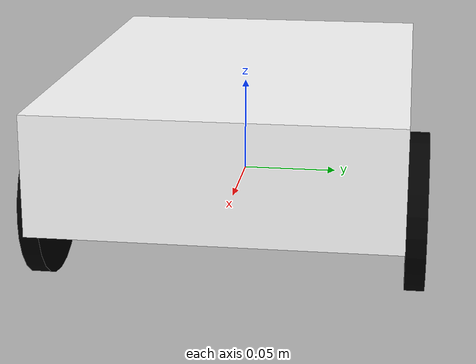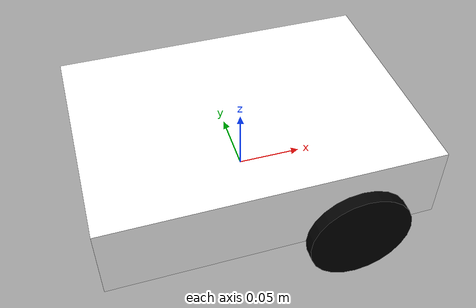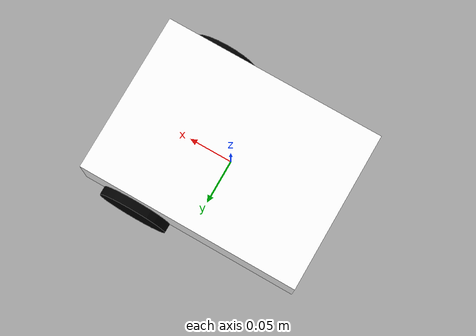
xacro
<?xml version="1.0"?>
<robot xmlns:xacro="http://www.ros.org/wiki/xacro" name="diffbot">

  <xacro:arg name="use_ros2_control" default="false"/>
  <xacro:arg name="controllers_file" default=""/>

  <!-- SIMULATION PARAMETERS -->
  <xacro:property name="chassis_length" value="0.25"/>
  <xacro:property name="chassis_width" value="0.18"/>
  <xacro:property name="chassis_height" value="0.06"/>
  <xacro:property name="chassis_mass" value="1.0"/>

  <xacro:property name="wheel_radius" value="0.04"/>
  <xacro:property name="wheel_width" value="0.01"/>
  <xacro:property name="wheel_mass" value="0.05"/>

  <!-- base_link is at the wheel axle centerline. -->
  <xacro:property name="chassis_z" value="${chassis_height / 2.0}"/>
  <xacro:property name="wheel_x" value="${chassis_length / 4.0}"/>
  <xacro:property name="wheel_y" value="0.095"/>
  <xacro:property name="wheel_z" value="0.0"/>

  <xacro:property name="caster_radius" value="${wheel_radius / 2.0}"/>
  <xacro:property name="caster_x" value="${-chassis_length / 4.0}"/>
  <xacro:property name="caster_z" value="${caster_radius - wheel_radius}"/>
  <xacro:property name="caster_mass" value="0.02"/>

  <xacro:macro name="box_inertia" params="mass x y z">
    <inertial>
      <mass value="${mass}"/>
      <inertia
        ixx="${mass * (y*y + z*z) / 12.0}" ixy="0" ixz="0"
        iyy="${mass * (x*x + z*z) / 12.0}" iyz="0"
        izz="${mass * (x*x + y*y) / 12.0}"/>
    </inertial>
  </xacro:macro>

  <xacro:macro name="wheel_inertia" params="mass radius width">
    <inertial>
      <mass value="${mass}"/>
      <inertia
        ixx="${mass * (3*radius*radius + width*width) / 12.0}" ixy="0" ixz="0"
        iyy="${mass * radius*radius / 2.0}" iyz="0"
        izz="${mass * (3*radius*radius + width*width) / 12.0}"/>
    </inertial>
  </xacro:macro>

  <xacro:macro name="sphere_inertia" params="mass radius">
    <inertial>
      <mass value="${mass}"/>
      <inertia
        ixx="${2.0 * mass * radius*radius / 5.0}" ixy="0" ixz="0"
        iyy="${2.0 * mass * radius*radius / 5.0}" iyz="0"
        izz="${2.0 * mass * radius*radius / 5.0}"/>
    </inertial>
  </xacro:macro>

  <!-- BASE LINK -->
  <link name="base_link">
    <visual>
      <origin xyz="0 0 ${chassis_z}" rpy="0 0 0"/>
      <geometry>
          <box size="${chassis_length} ${chassis_width} ${chassis_height}"/>
      </geometry>
      <material name="white">
        <color rgba="1 1 1 1"/>
      </material>
    </visual>
    <collision>
      <origin xyz="0 0 ${chassis_z}" rpy="0 0 0"/>
      <geometry>
          <box size="${chassis_length} ${chassis_width} ${chassis_height}"/>
      </geometry>
    </collision>
    <xacro:box_inertia mass="${chassis_mass}" x="${chassis_length}" y="${chassis_width}" z="${chassis_height}"/>
  </link>

  <!-- WHEEL LINK -->
  <xacro:macro name="wheel" params="name">
    <link name="${name}">
      <visual>
        <origin xyz="0 0 0" rpy="1.57075 0 0"/>
        <geometry>
            <cylinder radius="${wheel_radius}" length="${wheel_width}"/>
        </geometry>
        <material name="black">
          <color rgba="0 0 0 1"/>
        </material>
      </visual>
      <collision>
        <origin xyz="0 0 0" rpy="1.57075 0 0"/>
        <geometry>
            <cylinder radius="${wheel_radius}" length="${wheel_width}"/>
        </geometry>
      </collision>
      <xacro:wheel_inertia mass="${wheel_mass}" radius="${wheel_radius}" width="${wheel_width}"/>
    </link>
  </xacro:macro>

  <xacro:wheel name="left_wheel"/>
  <xacro:wheel name="right_wheel"/>

  <!-- CASTER LINK -->
  <xacro:macro name="caster" params="name">
    <link name="${name}">
      <visual>
        <origin xyz="0 0 0.0" rpy="0 0 0"/>
        <geometry>
              <sphere radius="${caster_radius}"/>
        </geometry>
        <material name="black">
          <color rgba="0 0 0 1"/>
        </material>
      </visual>
      <collision>
        <origin xyz="0 0 0" rpy="0 0 0"/>
        <geometry>
            <sphere radius="${caster_radius}"/>
        </geometry>
      </collision>
      <xacro:sphere_inertia mass="${caster_mass}" radius="${caster_radius}"/>
    </link>
  </xacro:macro>

  <xacro:caster name="caster"/>

  <!-- JOINTS -->
  <joint name="base_link_to_left_wheel" type="continuous">
    <parent link="base_link"/>
    <child link="left_wheel"/>
    <origin xyz="${wheel_x} ${wheel_y} ${wheel_z}" rpy="0 0 0"/>
    <axis xyz="0 1 0"/>
  </joint>

  <joint name="base_link_to_right_wheel" type="continuous">
    <parent link="base_link"/>
    <child link="right_wheel"/>
    <origin xyz="${wheel_x} -${wheel_y} ${wheel_z}" rpy="0 0 0"/>
    <axis xyz="0 1 0"/>
  </joint>

  <joint name="base_link_to_caster" type="fixed">
    <parent link="base_link"/>
    <child link="caster"/>
    <origin xyz="${caster_x} 0 ${caster_z}" rpy="0 0 0"/>
  </joint>

  <xacro:unless value="$(arg use_ros2_control)">
    <gazebo>
      <plugin filename="gz-sim-joint-state-publisher-system"
              name="gz::sim::systems::JointStatePublisher">
      </plugin>

      <plugin filename="gz-sim-diff-drive-system"
              name="gz::sim::systems::DiffDrive">
        <left_joint>base_link_to_left_wheel</left_joint>
        <right_joint>base_link_to_right_wheel</right_joint>
        <wheel_separation>${2 * wheel_y}</wheel_separation>
        <wheel_radius>${wheel_radius}</wheel_radius>
        <odom_publish_frequency>30</odom_publish_frequency>
        <max_linear_velocity>0.5</max_linear_velocity>
        <min_linear_velocity>-0.5</min_linear_velocity>
        <max_angular_velocity>1.0</max_angular_velocity>
        <min_angular_velocity>-1.0</min_angular_velocity>
      </plugin>
    </gazebo>
  </xacro:unless>

  <xacro:if value="$(arg use_ros2_control)">
    <ros2_control name="GazeboSimSystem" type="system">
      <hardware>
        <plugin>gz_ros2_control/GazeboSimSystem</plugin>
      </hardware>

      <joint name="base_link_to_left_wheel">
        <command_interface name="velocity">
          <param name="min">-10</param>
          <param name="max">10</param>
        </command_interface>
        <state_interface name="position"/>
        <state_interface name="velocity"/>
      </joint>

      <joint name="base_link_to_right_wheel">
        <command_interface name="velocity">
          <param name="min">-10</param>
          <param name="max">10</param>
        </command_interface>
        <state_interface name="position"/>
        <state_interface name="velocity"/>
      </joint>
    </ros2_control>

    <gazebo>
      <plugin filename="gz_ros2_control-system"
              name="gz_ros2_control::GazeboSimROS2ControlPlugin">
        <parameters>$(arg controllers_file)</parameters>
      </plugin>
    </gazebo>
  </xacro:if>

</robot>
